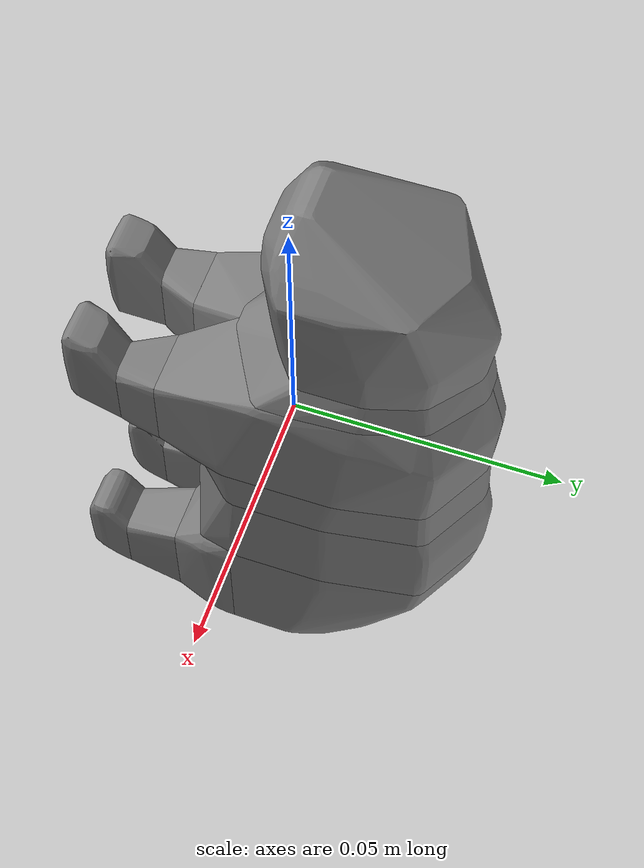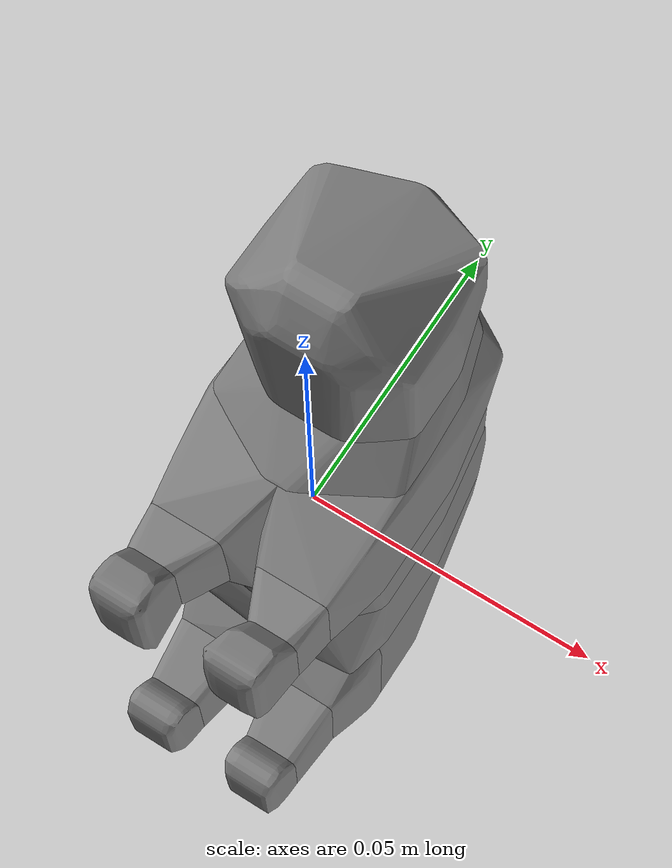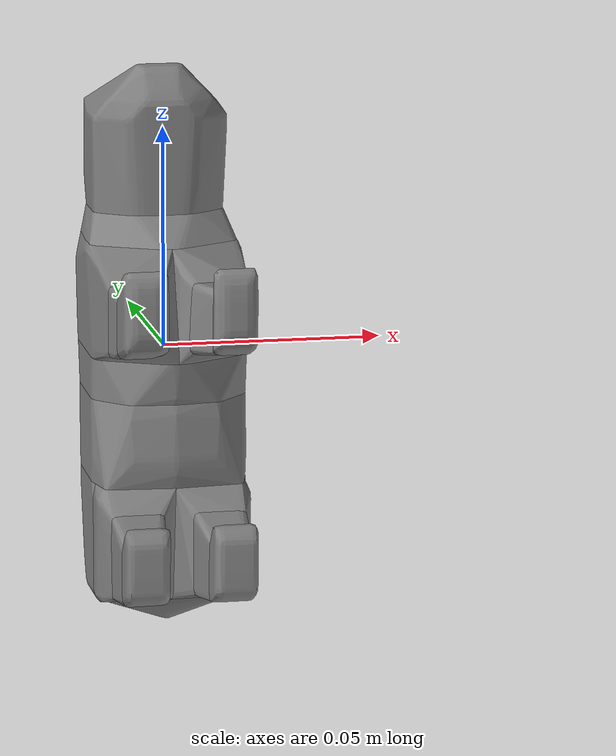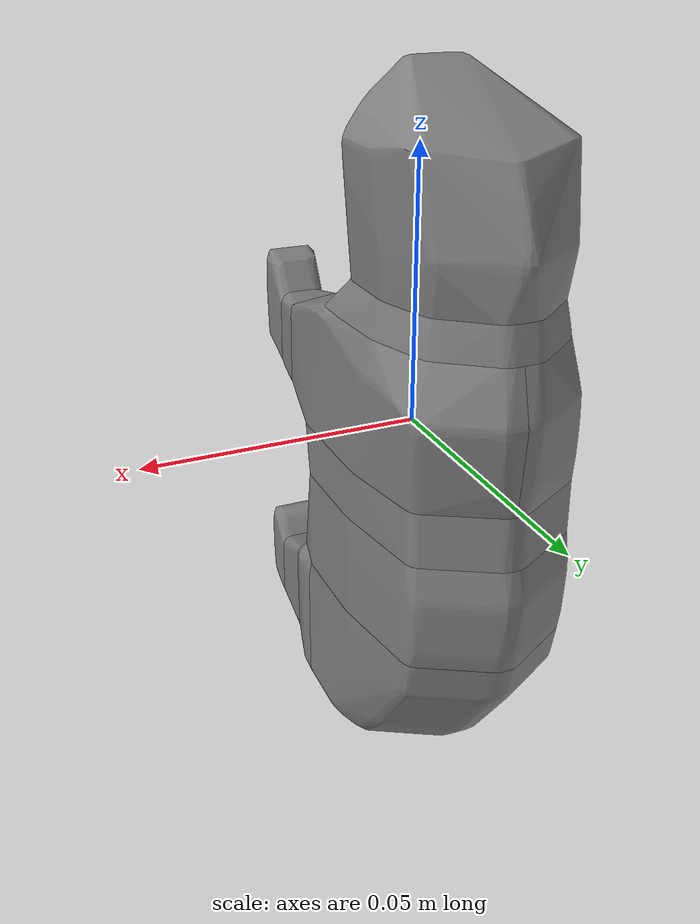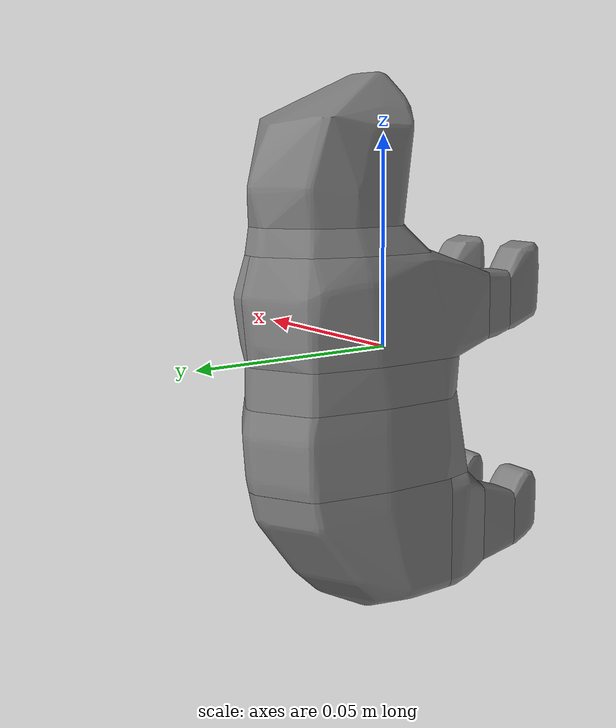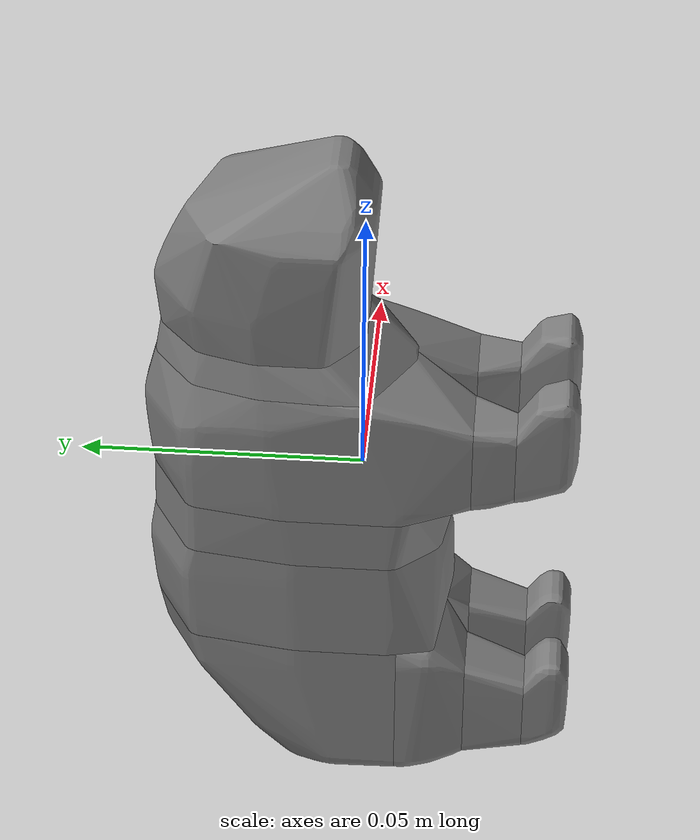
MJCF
<mujoco model="panda_f5d129892af5472ea3867a2342a033d3">
  <default>
    <default class="visual">
      <geom type="mesh" contype="0" conaffinity="0" group="1"/>
    </default>
    <default class="collision">
      <geom type="mesh" condim="6" group="0"/>
    </default>
  </default>
  <asset>
    <texture type="2d" name="texture" file="material_0.png"/>
    <material name="Material.001" texture="texture" specular="0.5" shininess="0.25"/>
    <mesh file="visual_mesh.obj" name="visual_mesh"/>
    <mesh file="meshes/convex_piece_0.obj" name="convex_piece_0"/>
    <mesh file="meshes/convex_piece_1.obj" name="convex_piece_1"/>
    <mesh file="meshes/convex_piece_10.obj" name="convex_piece_10"/>
    <mesh file="meshes/convex_piece_11.obj" name="convex_piece_11"/>
    <mesh file="meshes/convex_piece_12.obj" name="convex_piece_12"/>
    <mesh file="meshes/convex_piece_13.obj" name="convex_piece_13"/>
    <mesh file="meshes/convex_piece_14.obj" name="convex_piece_14"/>
    <mesh file="meshes/convex_piece_15.obj" name="convex_piece_15"/>
    <mesh file="meshes/convex_piece_16.obj" name="convex_piece_16"/>
    <mesh file="meshes/convex_piece_2.obj" name="convex_piece_2"/>
    <mesh file="meshes/convex_piece_3.obj" name="convex_piece_3"/>
    <mesh file="meshes/convex_piece_4.obj" name="convex_piece_4"/>
    <mesh file="meshes/convex_piece_5.obj" name="convex_piece_5"/>
    <mesh file="meshes/convex_piece_6.obj" name="convex_piece_6"/>
    <mesh file="meshes/convex_piece_7.obj" name="convex_piece_7"/>
    <mesh file="meshes/convex_piece_8.obj" name="convex_piece_8"/>
    <mesh file="meshes/convex_piece_9.obj" name="convex_piece_9"/>
  </asset>
  <worldbody>
    <body>
    <body name="object">
      <geom material="Material.001" mesh="visual_mesh" class="visual"/>
      <geom mesh="convex_piece_0" class="collision"/>
      <geom mesh="convex_piece_1" class="collision"/>
      <geom mesh="convex_piece_10" class="collision"/>
      <geom mesh="convex_piece_11" class="collision"/>
      <geom mesh="convex_piece_12" class="collision"/>
      <geom mesh="convex_piece_13" class="collision"/>
      <geom mesh="convex_piece_14" class="collision"/>
      <geom mesh="convex_piece_15" class="collision"/>
      <geom mesh="convex_piece_16" class="collision"/>
      <geom mesh="convex_piece_2" class="collision"/>
      <geom mesh="convex_piece_3" class="collision"/>
      <geom mesh="convex_piece_4" class="collision"/>
      <geom mesh="convex_piece_5" class="collision"/>
      <geom mesh="convex_piece_6" class="collision"/>
      <geom mesh="convex_piece_7" class="collision"/>
      <geom mesh="convex_piece_8" class="collision"/>
      <geom mesh="convex_piece_9" class="collision"/>
    </body>
      <site rgba="0 0 0 0" size="0.005" pos="0 0 -0.04" name="bottom_site" />
      <site rgba="0 0 0 0" size="0.005" pos="0 0 0.04" name="top_site" />
      <site rgba="0 0 0 0" size="0.005" pos="0.005 0.005 0" name="horizontal_radius_site" />
    </body>
  </worldbody>
</mujoco>
